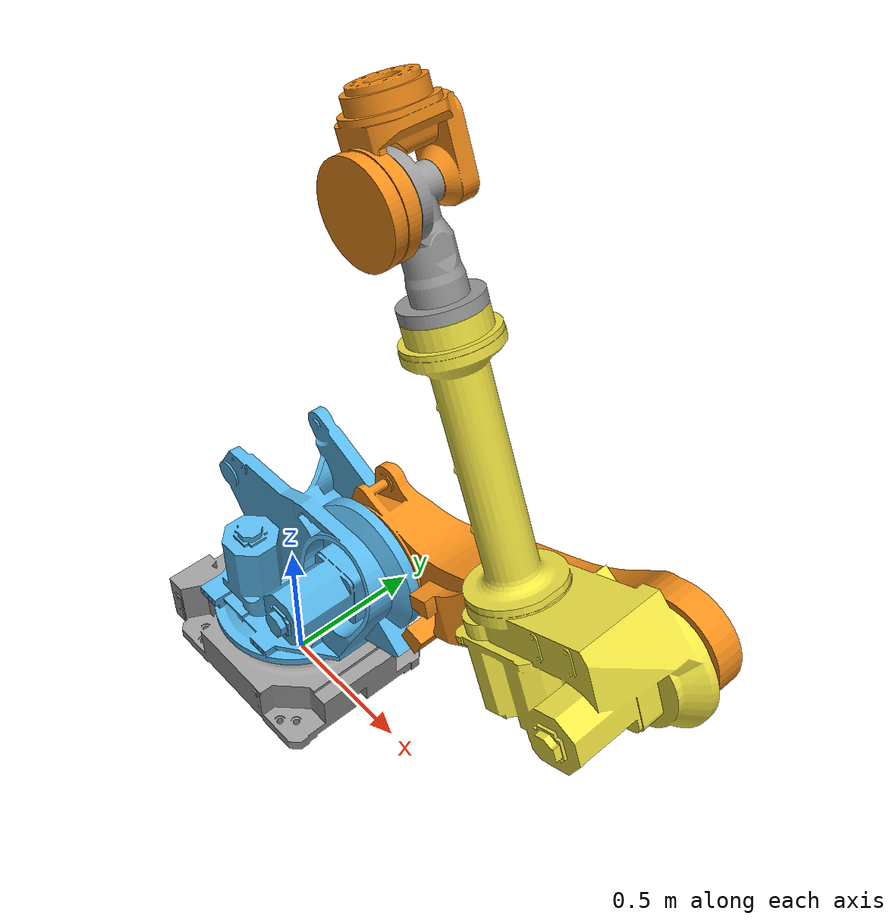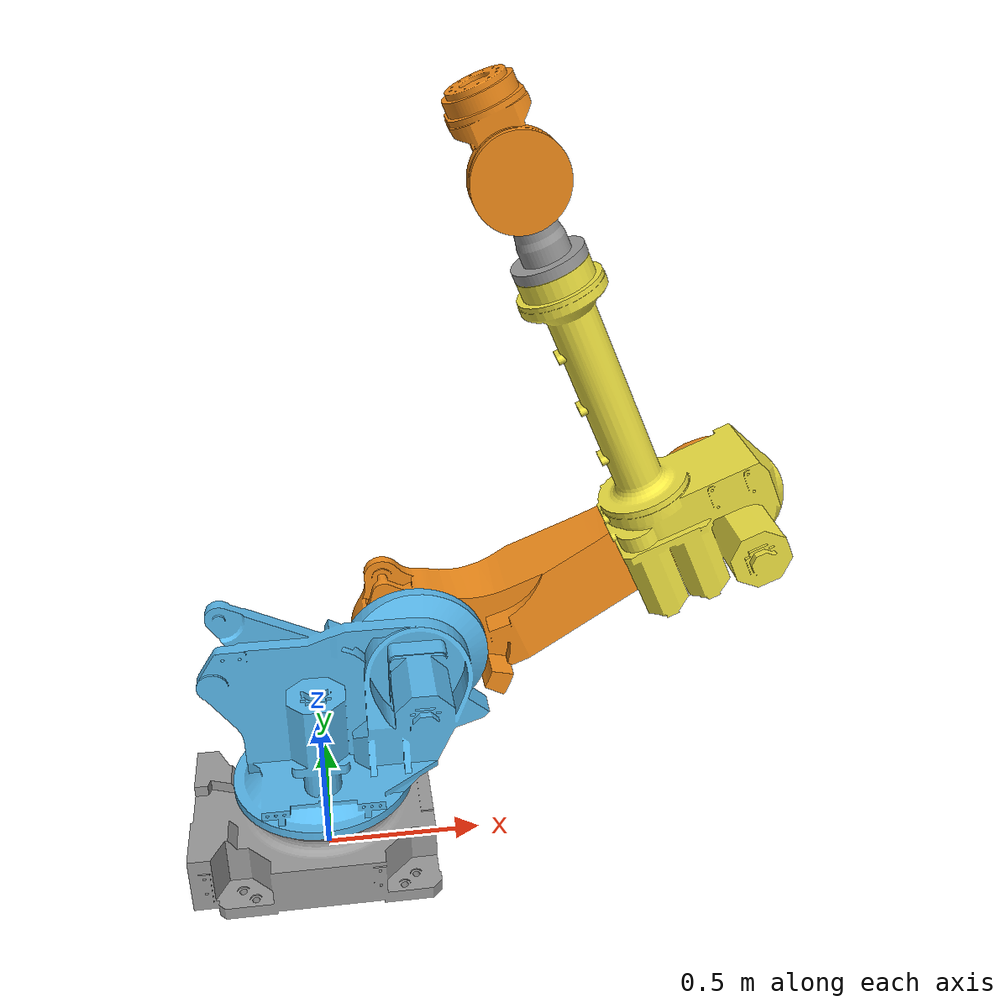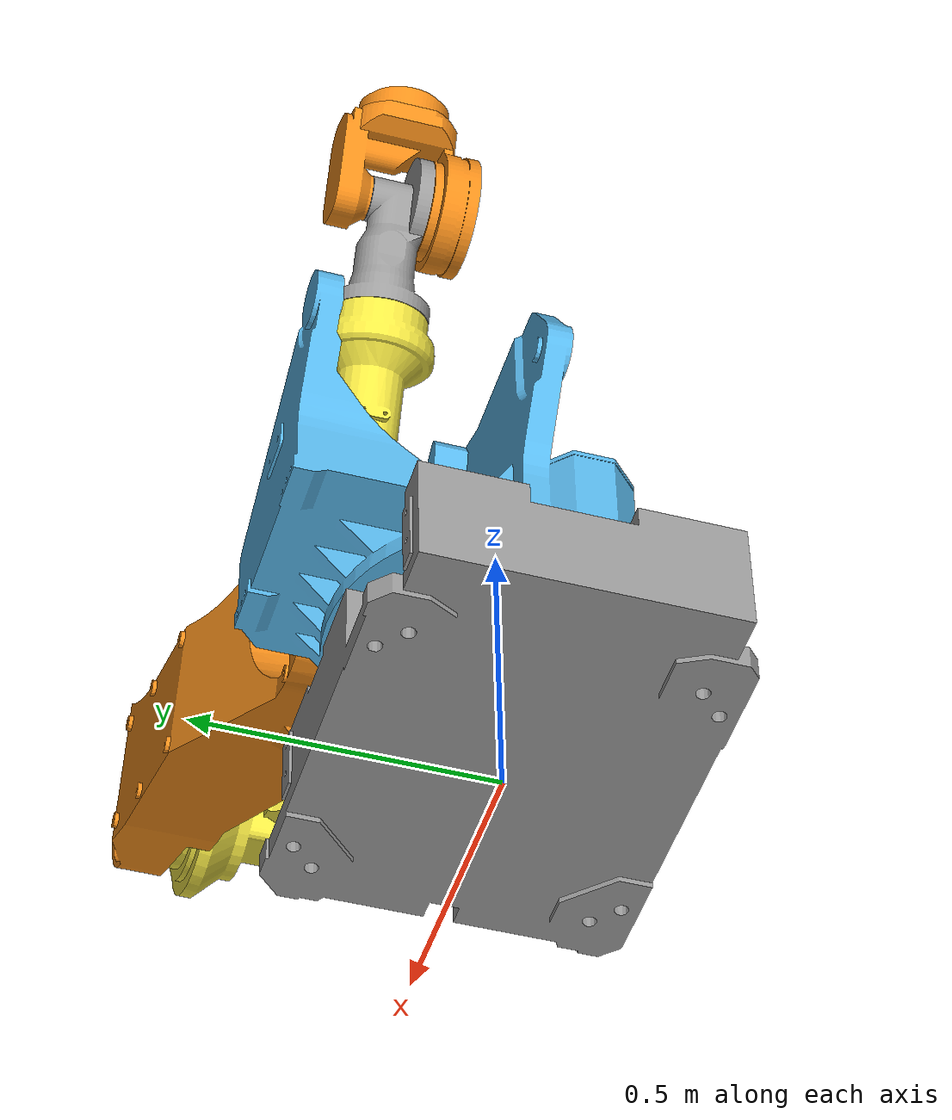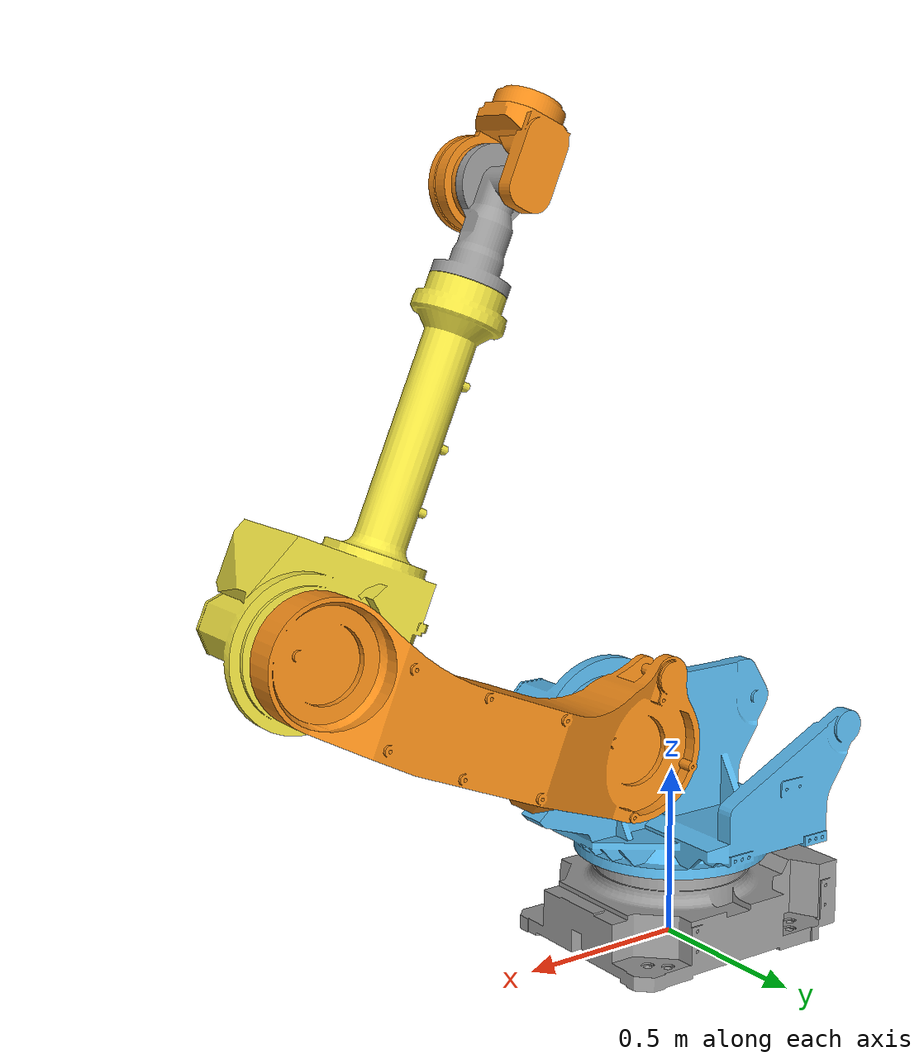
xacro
<?xml version="1.0"?>
<robot name="fanuc" xmlns:xacro="http://wiki.ros.org/xacro">

<link name="base_link">
        <mass value="20"/>
        <origin xyz="0.0 0.0 0.0"/>
        <inertia ixx="0.01042" ixy="0.001177" ixz="-0.0008871" iyy="0.01045" iyz="0.0002226" izz="0.01817"/>
      <visual>
        <origin xyz="0 0 0" rpy="0 0 0"/>
        <geometry>
          <mesh filename="package://fanuc_r2000ib_support/meshes/r2000ib210f/visual/base_link.stl"/>
        </geometry>
      </visual>
      <collision>
        <origin xyz="0 0 0" rpy="0 0 0"/>
        <geometry>
          <mesh filename="package://fanuc_r2000ib_support/meshes/r2000ib210f/collision/base_link.stl"/>
        </geometry>
      </collision>
    </link>
    <link name="link_1">
    <origin xyz="0.0 0.0 0.0"/>
    <mass value="18"/>
<inertia ixx="0.01042" ixy="0.001177" ixz="-0.0008871" iyy="0.01045" iyz="0.0002226" izz="0.01817"/>
      <visual>
        <origin xyz="0 0 0" rpy="0 0 0"/>
        <geometry>
          <mesh filename="package://fanuc_r2000ib_support/meshes/r2000ib210f/visual/link_1.stl"/>
        </geometry>
      </visual>
      <collision>
        <origin xyz="0 0 0" rpy="0 0 0"/>
        <geometry>
          <mesh filename="package://fanuc_r2000ib_support/meshes/r2000ib210f/collision/link_1.stl"/>
        </geometry>
      </collision>
    </link>
    <link name="link_2">
    <origin xyz="0.0 0.0 0.0"/>
    <mass value="10"/>
<inertia ixx="0.01042" ixy="0.001177" ixz="-0.0008871" iyy="0.01045" iyz="0.0002226" izz="0.01817"/>
      <visual>
        <origin xyz="0 0 0" rpy="0 0 0"/>
        <geometry>
          <mesh filename="package://fanuc_r2000ib_support/meshes/r2000ib210f/visual/link_2.stl"/>
        </geometry>
      </visual>
      <collision>
        <origin xyz="0 0 0" rpy="0 0 0"/>
        <geometry>
          <mesh filename="package://fanuc_r2000ib_support/meshes/r2000ib210f/collision/link_2.stl"/>
        </geometry>
      </collision>
    </link>
    <link name="link_3">
    <origin xyz="0.0 0.0 0.0"/>
    <mass value="10"/>
<inertia ixx="0.01042" ixy="0.001177" ixz="-0.0008871" iyy="0.01045" iyz="0.0002226" izz="0.01817"/>
      <visual>
        <origin xyz="0 0 0" rpy="0 0 0"/>
        <geometry>
          <mesh filename="package://fanuc_r2000ib_support/meshes/r2000ib210f/visual/link_3.stl"/>
        </geometry>
      </visual>
      <collision>
        <origin xyz="0 0 0" rpy="0 0 0"/>
        <geometry>
          <mesh filename="package://fanuc_r2000ib_support/meshes/r2000ib210f/collision/link_3.stl"/>
        </geometry>
      </collision>
    </link>
    <link name="link_4">
    <origin xyz="0.0 0.0 0.0"/>

    <mass value="10"/>
<inertia ixx="0.01042" ixy="0.001177" ixz="-0.0008871" iyy="0.01045" iyz="0.0002226" izz="0.01817"/>
      <visual>
        <origin xyz="0 0 0" rpy="0 0 0"/>
        <geometry>
          <mesh filename="package://fanuc_r2000ib_support/meshes/r2000ib210f/visual/link_4.stl"/>
        </geometry>
      </visual>
      <collision>
        <origin xyz="0 0 0" rpy="0 0 0"/>
        <geometry>
          <mesh filename="package://fanuc_r2000ib_support/meshes/r2000ib210f/collision/link_4.stl"/>
        </geometry>
      </collision>
    </link>
    <link name="link_5">
    <origin xyz="0.0 0.0 0.0"/>
    <mass value="8"/>
<inertia ixx="0.01042" ixy="0.001177" ixz="-0.0008871" iyy="0.01045" iyz="0.0002226" izz="0.01817"/>
      <visual>
        <origin xyz="0 0 0" rpy="0 0 0"/>
        <geometry>
          <mesh filename="package://fanuc_r2000ib_support/meshes/r2000ib210f/visual/link_5.stl"/>
        </geometry>
      </visual>
      <collision>
        <origin xyz="0 0 0" rpy="0 0 0"/>
        <geometry>
          <mesh filename="package://fanuc_r2000ib_support/meshes/r2000ib210f/collision/link_5.stl"/>
        </geometry>
      </collision>
    </link>
    <link name="link_6">
    <origin xyz="0.0 0.0 0.0"/>
    <mass value="2"/>
<inertia ixx="0.01042" ixy="0.001177" ixz="-0.0008871" iyy="0.01045" iyz="0.0002226" izz="0.01817"/>
      <visual>
        <origin xyz="0 0 0" rpy="0 0 0"/>
        <geometry>
          <mesh filename="package://fanuc_r2000ib_support/meshes/r2000ib210f/visual/link_6.stl"/>
        </geometry>
      </visual>
      <collision>
        <origin xyz="0 0 0" rpy="0 0 0"/>
        <geometry>
          <mesh filename="package://fanuc_r2000ib_support/meshes/r2000ib210f/collision/link_6.stl"/>
        </geometry>
      </collision>
    </link>

    <joint name="joint_main" type="revolute">
      <origin xyz="0 0 0.670" rpy="0 0 0"/>
      <parent link="base_link"/>
      <child link="link_1"/>
      <axis xyz="0 0 1"/>
      <limit lower="-3.14" upper="3.14" effort="2" velocity="2"/>
    </joint>
    <joint name="joint_2" type="revolute">
      <origin xyz="0.312 0 0" rpy="0 0 0"/>
      <parent link="link_1"/>
      <child link="link_2"/>
      <axis xyz="0 1 0"/>
      <limit lower="1.04" upper="1.32" effort="2" velocity="2"/>
    </joint>
    <joint name="joint_3" type="revolute">
      <origin xyz="0 0 1.075" rpy="0 0 0"/>
      <parent link="link_2"/>
      <child link="link_3"/>
      <axis xyz="0 -1 0"/>
      <limit lower="2.303" upper="4.014" effort="2" velocity="2"/>
    </joint>
    <joint name="joint_4" type="revolute">
      <origin xyz="0 0 0.225" rpy="0 0 0"/>
      <parent link="link_3"/>
      <child link="link_4"/>
      <axis xyz="-1 0 0"/>
      <limit lower="-6.28" upper="6.28" effort="2" velocity="2"/>
    </joint>
    <joint name="joint_5" type="revolute">
      <origin xyz="1.280 0 0" rpy="0 0 0"/>
      <parent link="link_4"/>
      <child link="link_5"/>
      <axis xyz="0 -1 0"/>
      <limit lower="-2.181" upper="2.181" effort="2" velocity="2"/>
    </joint>
    <joint name="joint_6" type="revolute">
      <origin xyz="0.235 0 0" rpy="0 0 0"/>
      <parent link="link_5"/>
      <child link="link_6"/>
      <axis xyz="-1 0 0"/>
      <limit lower="-6.28" upper="-6.28" effort="2" velocity="2"/>
    </joint>

    <!-- ROS-Industrial 'base' frame: base_link to Fanuc World Coordinates transform -->
    <link name="base" />
    <joint name="base_link-base" type="fixed">
      <origin xyz="0 0 0.670" rpy="0 0 0"/>
      <parent link="base_link"/>
      <child link="base"/>
    </joint>

    <!-- ROS-Industrial 'flange' frame: attachment point for EEF models -->
    <link name="flange" />
    <joint name="joint_6-flange" type="fixed">
      <origin xyz="0 0 0" rpy="0 0 0" />
      <parent link="link_6" />
      <child link="flange" />
    </joint>

    <!-- ROS-Industrial 'tool0' frame: all-zeros tool frame -->
    <link name="tool0" />
    <joint name="link_6-tool0" type="fixed">
      <origin xyz="0 0 0" rpy="3.142 -1.571 0" />
      <parent link="flange" />
      <child link="tool0" />
    </joint>

<!-- Transmissions  -->
<transmission name="joint_1_tran">
    <type>transmission_interface/SimpleTransmission</type>
    <joint name="joint_main">
      <hardwareInterface>hardware_interface/PositionJointInterface</hardwareInterface>
    </joint>
    <actuator name="joint_1_motor">
      <hardwareInterface>hardware_interface/PositionJointInterface</hardwareInterface>
      <mechanicalReduction>1</mechanicalReduction>
    </actuator>
</transmission>

<!-- Transmissions  -->
<transmission name="joint_2_tran">
    <type>transmission_interface/SimpleTransmission</type>
    <joint name="joint_2">
      <hardwareInterface>hardware_interface/PositionJointInterface</hardwareInterface>
    </joint>
    <actuator name="joint_2_motor">
      <hardwareInterface>hardware_interface/PositionJointInterface</hardwareInterface>
      <mechanicalReduction>1</mechanicalReduction>
    </actuator>
</transmission>

<!-- Transmissions  -->
<transmission name="joint_3_tran">
    <type>transmission_interface/SimpleTransmission</type>
    <joint name="joint_3">
      <hardwareInterface>hardware_interface/PositionJointInterface</hardwareInterface>
    </joint>
    <actuator name="joint_3_motor">
      <hardwareInterface>hardware_interface/PositionJointInterface</hardwareInterface>
      <mechanicalReduction>1</mechanicalReduction>
    </actuator>
</transmission>

<!-- Transmissions  -->
<transmission name="joint_4_tran">
    <type>transmission_interface/SimpleTransmission</type>
    <joint name="joint_4">
      <hardwareInterface>hardware_interface/PositionJointInterface</hardwareInterface>
    </joint>
    <actuator name="joint_4_motor">
      <hardwareInterface>hardware_interface/PositionJointInterface</hardwareInterface>
      <mechanicalReduction>1</mechanicalReduction>
    </actuator>
</transmission>

<!-- Transmissions  -->
<transmission name="joint_5_tran">
    <type>transmission_interface/SimpleTransmission</type>
    <joint name="joint_5">
      <hardwareInterface>hardware_interface/PositionJointInterface</hardwareInterface>
    </joint>
    <actuator name="joint_5_motor">
      <hardwareInterface>hardware_interface/PositionJointInterface</hardwareInterface>
      <mechanicalReduction>1</mechanicalReduction>
    </actuator>
</transmission>

<!-- Transmissions  -->
<transmission name="joint_6_tran">
    <type>transmission_interface/SimpleTransmission</type>
    <joint name="joint_6">
      <hardwareInterface>hardware_interface/PositionJointInterface</hardwareInterface>
    </joint>
    <actuator name="joint_6_motor">
      <hardwareInterface>hardware_interface/PositionJointInterface</hardwareInterface>
      <mechanicalReduction>1</mechanicalReduction>
    </actuator>
</transmission>

<gazebo reference="base_link">
      <selfCollide>true</selfCollide>
    </gazebo>
    <gazebo reference="link_1">
      <selfCollide>true</selfCollide>
    </gazebo>
    <gazebo reference="link_2">
      <selfCollide>true</selfCollide>
    </gazebo>
    <gazebo reference="link_3">
      <selfCollide>true</selfCollide>
    </gazebo>
    <gazebo reference="link_4">
      <selfCollide>true</selfCollide>
    </gazebo>
    <gazebo reference="link_5">
      <selfCollide>true</selfCollide>
    </gazebo>

    <gazebo reference="link_6">
      <selfCollide>true</selfCollide>
    </gazebo>

 <!-- Gazebo colors -->
   <gazebo reference="base_link">
      <material>Gazebo/Grey</material>
   </gazebo>
   <gazebo reference="link_1">
      <material>Gazebo/</material>
   </gazebo>
   <gazebo reference="link_2">
      <material>Gazebo/Orange</material>
   </gazebo>
   <gazebo reference="link_3">
      <material>Gazebo/</material>
   </gazebo>
   <gazebo reference="link_4">
      <material>Gazebo/Grey</material>
   </gazebo>
   <gazebo reference="link_5">
      <material>Gazebo/Orange</material>
   </gazebo>
   <gazebo reference="link_6">
      <material>Gazebo/Orange</material>
   </gazebo>

<!-- Self collision in Gazebo -->

<!-- Plugins and publishers -->

<gazebo>
      <plugin name="gazebo_ros_control" filename="libgazebo_ros_control.so">
         <robotSimType>gazebo_ros_control/DefaultRobotHWSim</robotSimType>
      </plugin>
   </gazebo>

</robot>
